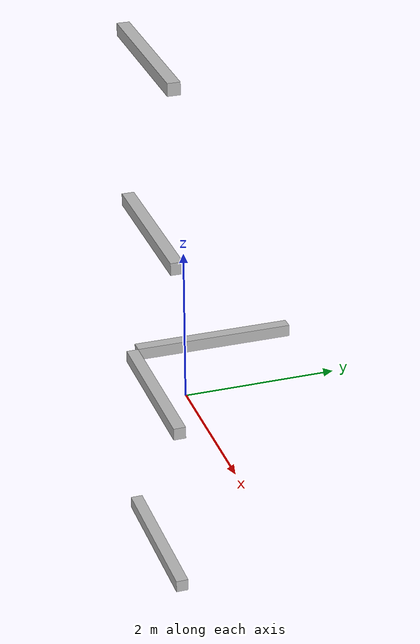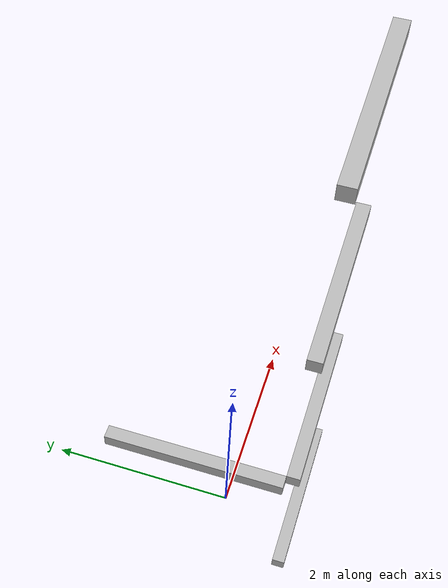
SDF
<sdf version="1.7">
 <world name="default">
  <model name="orthogonal_747_2.000.15_TS">
   <static>1</static>
   <link name="x_link_0_2_3">
    <inertial>
     <mass>1</mass>
     <inertia>
      <ixx>0.166667</ixx>
      <ixy>0</ixy>
      <ixz>0</ixz>
      <iyy>0.166667</iyy>
      <iyz>0</iyz>
      <izz>0.166667</izz>
     </inertia>
    </inertial>
    <pose>7.525 4.3 1.075 0 -0 0</pose>
    <visual name="visual_0">
     <laser_retro>386</laser_retro>
     <geometry><box><size>2 1e-06 0.15</size></box></geometry>
     <material>
      <script><name>Gazebo/Grey</name><uri>file://media/materials/scripts/gazebo.material</uri></script>
      <shader type="pixel"><normal_map>__default__</normal_map></shader>
      <ambient>0.678 0.498 0.659 1</ambient>
      <diffuse>0.7 0.7 0.7 1</diffuse>
      <specular>0.01 0.01 0.01 1</specular>
      <emissive>0 0 0 1</emissive>
     </material>
     <pose>0 -0.075 0 0 -0 0</pose>
     <transparency>1</transparency>
    </visual>
    <visual name="visual_1">
     <laser_retro>387</laser_retro>
     <geometry><box><size>2 1e-06 0.15</size></box></geometry>
     <material>
      <script><name>Gazebo/Grey</name><uri>file://media/materials/scripts/gazebo.material</uri></script>
      <shader type="pixel"><normal_map>__default__</normal_map></shader>
      <ambient>0.447 0.624 0.812 1</ambient>
      <diffuse>0.7 0.7 0.7 1</diffuse>
      <specular>0.01 0.01 0.01 1</specular>
      <emissive>0 0 0 1</emissive>
     </material>
     <pose>0 0.075 0 0 -0 0</pose>
     <transparency>1</transparency>
    </visual>
    <visual name="visual_2">
     <laser_retro>388</laser_retro>
     <geometry><box><size>2 0.15 1e-06</size></box></geometry>
     <material>
      <script><name>Gazebo/Grey</name><uri>file://media/materials/scripts/gazebo.material</uri></script>
      <shader type="pixel"><normal_map>__default__</normal_map></shader>
      <ambient>0.988 0.686 0.243 1</ambient>
      <diffuse>0.7 0.7 0.7 1</diffuse>
      <specular>0.01 0.01 0.01 1</specular>
      <emissive>0 0 0 1</emissive>
     </material>
     <pose>0 0 -0.075 0 -0 0</pose>
     <transparency>1</transparency>
    </visual>
    <visual name="visual_3">
     <laser_retro>389</laser_retro>
     <geometry><box><size>1e-06 0.15 0.15</size></box></geometry>
     <material>
      <script><name>Gazebo/Grey</name><uri>file://media/materials/scripts/gazebo.material</uri></script>
      <shader type="pixel"><normal_map>__default__</normal_map></shader>
      <ambient>0.988 0.914 0.31 1</ambient>
      <diffuse>0.7 0.7 0.7 1</diffuse>
      <specular>0.01 0.01 0.01 1</specular>
      <emissive>0 0 0 1</emissive>
     </material>
     <pose>1 0 0 0 -0 0</pose>
     <transparency>1</transparency>
    </visual>
    <visual name="visual_4">
     <laser_retro>390</laser_retro>
     <geometry><box><size>2 0.15 1e-06</size></box></geometry>
     <material>
      <script><name>Gazebo/Grey</name><uri>file://media/materials/scripts/gazebo.material</uri></script>
      <shader type="pixel"><normal_map>__default__</normal_map></shader>
      <ambient>0.937 0.161 0.161 1</ambient>
      <diffuse>0.7 0.7 0.7 1</diffuse>
      <specular>0.01 0.01 0.01 1</specular>
      <emissive>0 0 0 1</emissive>
     </material>
     <pose>0 0 0.075 0 -0 0</pose>
     <transparency>1</transparency>
    </visual>
    <visual name="visual_5">
     <laser_retro>391</laser_retro>
     <geometry><box><size>1e-06 0.15 0.15</size></box></geometry>
     <material>
      <script><name>Gazebo/Grey</name><uri>file://media/materials/scripts/gazebo.material</uri></script>
      <shader type="pixel"><normal_map>__default__</normal_map></shader>
      <ambient>0.541 0.886 0.204 1</ambient>
      <diffuse>0.7 0.7 0.7 1</diffuse>
      <specular>0.01 0.01 0.01 1</specular>
      <emissive>0 0 0 1</emissive>
     </material>
     <pose>-1 0 0 0 -0 0</pose>
     <transparency>1</transparency>
    </visual>
    <visual name="visual_texture">
     <geometry><box><size>1.9998 0.149985 0.149985</size></box></geometry>
     <material>
      <script>
       <uri>model://BASE_MODELS/simple_block_v2_textured/materials/scripts</uri>
       <uri>model://BASE_MODELS/simple_block_v2_textured/materials/textures</uri>
       <name>metal</name>
      </script>
     </material>
     <laser_retro>392</laser_retro>
    </visual>
    <collision name="collision">
     <geometry><box><size>2 0.15 0.15</size></box></geometry>
     <surface>
      <friction>
       <ode><mu>1</mu><mu2>1</mu2><fdir1>0 0 0</fdir1><slip1>0</slip1><slip2>0</slip2></ode>
       <torsional>
        <coefficient>1</coefficient>
        <patch_radius>0</patch_radius>
        <surface_radius>0</surface_radius>
        <use_patch_radius>1</use_patch_radius>
        <ode><slip>0</slip></ode>
       </torsional>
      </friction>
      <bounce><restitution_coefficient>0</restitution_coefficient><threshold>1e+06</threshold></bounce>
      <contact>
       <collide_without_contact>0</collide_without_contact>
       <collide_without_contact_bitmask>1</collide_without_contact_bitmask>
       <collide_bitmask>1</collide_bitmask>
       <ode>
        <soft_cfm>0</soft_cfm>
        <soft_erp>0.2</soft_erp>
        <kp>1e+13</kp>
        <kd>1</kd>
        <max_vel>0.01</max_vel>
        <min_depth>0</min_depth>
       </ode>
       <bullet>
        <split_impulse>1</split_impulse>
        <split_impulse_penetration_threshold>-0.01</split_impulse_penetration_threshold>
        <soft_cfm>0</soft_cfm>
        <soft_erp>0.2</soft_erp>
        <kp>1e+13</kp>
        <kd>1</kd>
       </bullet>
      </contact>
     </surface>
    </collision>
   </link>
   <link name="x_link_1_2_3">
    <inertial>
     <mass>1</mass>
     <inertia>
      <ixx>0.166667</ixx>
      <ixy>0</ixy>
      <ixz>0</ixz>
      <iyy>0.166667</iyy>
      <iyz>0</iyz>
      <izz>0.166667</izz>
     </inertia>
    </inertial>
    <pose>7.525 4.3 3.225 0 -0 0</pose>
    <visual name="visual_0">
     <laser_retro>1212</laser_retro>
     <geometry><box><size>2 1e-06 0.15</size></box></geometry>
     <material>
      <script><name>Gazebo/Grey</name><uri>file://media/materials/scripts/gazebo.material</uri></script>
      <shader type="pixel"><normal_map>__default__</normal_map></shader>
      <ambient>0.678 0.498 0.659 1</ambient>
      <diffuse>0.7 0.7 0.7 1</diffuse>
      <specular>0.01 0.01 0.01 1</specular>
      <emissive>0 0 0 1</emissive>
     </material>
     <pose>0 -0.075 0 0 -0 0</pose>
     <transparency>1</transparency>
    </visual>
    <visual name="visual_1">
     <laser_retro>1213</laser_retro>
     <geometry><box><size>2 1e-06 0.15</size></box></geometry>
     <material>
      <script><name>Gazebo/Grey</name><uri>file://media/materials/scripts/gazebo.material</uri></script>
      <shader type="pixel"><normal_map>__default__</normal_map></shader>
      <ambient>0.447 0.624 0.812 1</ambient>
      <diffuse>0.7 0.7 0.7 1</diffuse>
      <specular>0.01 0.01 0.01 1</specular>
      <emissive>0 0 0 1</emissive>
     </material>
     <pose>0 0.075 0 0 -0 0</pose>
     <transparency>1</transparency>
    </visual>
    <visual name="visual_2">
     <laser_retro>1214</laser_retro>
     <geometry><box><size>2 0.15 1e-06</size></box></geometry>
     <material>
      <script><name>Gazebo/Grey</name><uri>file://media/materials/scripts/gazebo.material</uri></script>
      <shader type="pixel"><normal_map>__default__</normal_map></shader>
      <ambient>0.988 0.686 0.243 1</ambient>
      <diffuse>0.7 0.7 0.7 1</diffuse>
      <specular>0.01 0.01 0.01 1</specular>
      <emissive>0 0 0 1</emissive>
     </material>
     <pose>0 0 -0.075 0 -0 0</pose>
     <transparency>1</transparency>
    </visual>
    <visual name="visual_3">
     <laser_retro>1215</laser_retro>
     <geometry><box><size>1e-06 0.15 0.15</size></box></geometry>
     <material>
      <script><name>Gazebo/Grey</name><uri>file://media/materials/scripts/gazebo.material</uri></script>
      <shader type="pixel"><normal_map>__default__</normal_map></shader>
      <ambient>0.988 0.914 0.31 1</ambient>
      <diffuse>0.7 0.7 0.7 1</diffuse>
      <specular>0.01 0.01 0.01 1</specular>
      <emissive>0 0 0 1</emissive>
     </material>
     <pose>1 0 0 0 -0 0</pose>
     <transparency>1</transparency>
    </visual>
    <visual name="visual_4">
     <laser_retro>1216</laser_retro>
     <geometry><box><size>2 0.15 1e-06</size></box></geometry>
     <material>
      <script><name>Gazebo/Grey</name><uri>file://media/materials/scripts/gazebo.material</uri></script>
      <shader type="pixel"><normal_map>__default__</normal_map></shader>
      <ambient>0.937 0.161 0.161 1</ambient>
      <diffuse>0.7 0.7 0.7 1</diffuse>
      <specular>0.01 0.01 0.01 1</specular>
      <emissive>0 0 0 1</emissive>
     </material>
     <pose>0 0 0.075 0 -0 0</pose>
     <transparency>1</transparency>
    </visual>
    <visual name="visual_5">
     <laser_retro>1217</laser_retro>
     <geometry><box><size>1e-06 0.15 0.15</size></box></geometry>
     <material>
      <script><name>Gazebo/Grey</name><uri>file://media/materials/scripts/gazebo.material</uri></script>
      <shader type="pixel"><normal_map>__default__</normal_map></shader>
      <ambient>0.541 0.886 0.204 1</ambient>
      <diffuse>0.7 0.7 0.7 1</diffuse>
      <specular>0.01 0.01 0.01 1</specular>
      <emissive>0 0 0 1</emissive>
     </material>
     <pose>-1 0 0 0 -0 0</pose>
     <transparency>1</transparency>
    </visual>
    <visual name="visual_texture">
     <geometry><box><size>1.9998 0.149985 0.149985</size></box></geometry>
     <material>
      <script>
       <uri>model://BASE_MODELS/simple_block_v2_textured/materials/scripts</uri>
       <uri>model://BASE_MODELS/simple_block_v2_textured/materials/textures</uri>
       <name>metal</name>
      </script>
     </material>
     <laser_retro>1218</laser_retro>
    </visual>
    <collision name="collision">
     <geometry><box><size>2 0.15 0.15</size></box></geometry>
     <surface>
      <friction>
       <ode><mu>1</mu><mu2>1</mu2><fdir1>0 0 0</fdir1><slip1>0</slip1><slip2>0</slip2></ode>
       <torsional>
        <coefficient>1</coefficient>
        <patch_radius>0</patch_radius>
        <surface_radius>0</surface_radius>
        <use_patch_radius>1</use_patch_radius>
        <ode><slip>0</slip></ode>
       </torsional>
      </friction>
      <bounce><restitution_coefficient>0</restitution_coefficient><threshold>1e+06</threshold></bounce>
      <contact>
       <collide_without_contact>0</collide_without_contact>
       <collide_without_contact_bitmask>1</collide_without_contact_bitmask>
       <collide_bitmask>1</collide_bitmask>
       <ode>
        <soft_cfm>0</soft_cfm>
        <soft_erp>0.2</soft_erp>
        <kp>1e+13</kp>
        <kd>1</kd>
        <max_vel>0.01</max_vel>
        <min_depth>0</min_depth>
       </ode>
       <bullet>
        <split_impulse>1</split_impulse>
        <split_impulse_penetration_threshold>-0.01</split_impulse_penetration_threshold>
        <soft_cfm>0</soft_cfm>
        <soft_erp>0.2</soft_erp>
        <kp>1e+13</kp>
        <kd>1</kd>
       </bullet>
      </contact>
     </surface>
    </collision>
   </link>
   <link name="y_link_1_2_3">
    <inertial>
     <mass>1</mass>
     <inertia>
      <ixx>0.166667</ixx>
      <ixy>0</ixy>
      <ixz>0</ixz>
      <iyy>0.166667</iyy>
      <iyz>0</iyz>
      <izz>0.166667</izz>
     </inertia>
    </inertial>
    <pose>6.45 5.375 3.225 0 -0 0</pose>
    <visual name="visual_0">
     <laser_retro>1219</laser_retro>
     <geometry><box><size>0.15 1e-06 0.15</size></box></geometry>
     <material>
      <script><name>Gazebo/Grey</name><uri>file://media/materials/scripts/gazebo.material</uri></script>
      <shader type="pixel"><normal_map>__default__</normal_map></shader>
      <ambient>0.678 0.498 0.659 1</ambient>
      <diffuse>0.7 0.7 0.7 1</diffuse>
      <specular>0.01 0.01 0.01 1</specular>
      <emissive>0 0 0 1</emissive>
     </material>
     <pose>0 -1 0 0 -0 0</pose>
     <transparency>1</transparency>
    </visual>
    <visual name="visual_1">
     <laser_retro>1220</laser_retro>
     <geometry><box><size>0.15 1e-06 0.15</size></box></geometry>
     <material>
      <script><name>Gazebo/Grey</name><uri>file://media/materials/scripts/gazebo.material</uri></script>
      <shader type="pixel"><normal_map>__default__</normal_map></shader>
      <ambient>0.447 0.624 0.812 1</ambient>
      <diffuse>0.7 0.7 0.7 1</diffuse>
      <specular>0.01 0.01 0.01 1</specular>
      <emissive>0 0 0 1</emissive>
     </material>
     <pose>0 1 0 0 -0 0</pose>
     <transparency>1</transparency>
    </visual>
    <visual name="visual_2">
     <laser_retro>1221</laser_retro>
     <geometry><box><size>0.15 2 1e-06</size></box></geometry>
     <material>
      <script><name>Gazebo/Grey</name><uri>file://media/materials/scripts/gazebo.material</uri></script>
      <shader type="pixel"><normal_map>__default__</normal_map></shader>
      <ambient>0.988 0.686 0.243 1</ambient>
      <diffuse>0.7 0.7 0.7 1</diffuse>
      <specular>0.01 0.01 0.01 1</specular>
      <emissive>0 0 0 1</emissive>
     </material>
     <pose>0 0 -0.075 0 -0 0</pose>
     <transparency>1</transparency>
    </visual>
    <visual name="visual_3">
     <laser_retro>1222</laser_retro>
     <geometry><box><size>1e-06 2 0.15</size></box></geometry>
     <material>
      <script><name>Gazebo/Grey</name><uri>file://media/materials/scripts/gazebo.material</uri></script>
      <shader type="pixel"><normal_map>__default__</normal_map></shader>
      <ambient>0.988 0.914 0.31 1</ambient>
      <diffuse>0.7 0.7 0.7 1</diffuse>
      <specular>0.01 0.01 0.01 1</specular>
      <emissive>0 0 0 1</emissive>
     </material>
     <pose>0.075 0 0 0 -0 0</pose>
     <transparency>1</transparency>
    </visual>
    <visual name="visual_4">
     <laser_retro>1223</laser_retro>
     <geometry><box><size>0.15 2 1e-06</size></box></geometry>
     <material>
      <script><name>Gazebo/Grey</name><uri>file://media/materials/scripts/gazebo.material</uri></script>
      <shader type="pixel"><normal_map>__default__</normal_map></shader>
      <ambient>0.937 0.161 0.161 1</ambient>
      <diffuse>0.7 0.7 0.7 1</diffuse>
      <specular>0.01 0.01 0.01 1</specular>
      <emissive>0 0 0 1</emissive>
     </material>
     <pose>0 0 0.075 0 -0 0</pose>
     <transparency>1</transparency>
    </visual>
    <visual name="visual_5">
     <laser_retro>1224</laser_retro>
     <geometry><box><size>1e-06 2 0.15</size></box></geometry>
     <material>
      <script><name>Gazebo/Grey</name><uri>file://media/materials/scripts/gazebo.material</uri></script>
      <shader type="pixel"><normal_map>__default__</normal_map></shader>
      <ambient>0.541 0.886 0.204 1</ambient>
      <diffuse>0.7 0.7 0.7 1</diffuse>
      <specular>0.01 0.01 0.01 1</specular>
      <emissive>0 0 0 1</emissive>
     </material>
     <pose>-0.075 0 0 0 -0 0</pose>
     <transparency>1</transparency>
    </visual>
    <visual name="visual_texture">
     <geometry><box><size>0.149985 1.9998 0.149985</size></box></geometry>
     <material>
      <script>
       <uri>model://BASE_MODELS/simple_block_v2_textured/materials/scripts</uri>
       <uri>model://BASE_MODELS/simple_block_v2_textured/materials/textures</uri>
       <name>metal</name>
      </script>
     </material>
     <laser_retro>1225</laser_retro>
    </visual>
    <collision name="collision">
     <geometry><box><size>0.15 2 0.15</size></box></geometry>
     <surface>
      <friction>
       <ode><mu>1</mu><mu2>1</mu2><fdir1>0 0 0</fdir1><slip1>0</slip1><slip2>0</slip2></ode>
       <torsional>
        <coefficient>1</coefficient>
        <patch_radius>0</patch_radius>
        <surface_radius>0</surface_radius>
        <use_patch_radius>1</use_patch_radius>
        <ode><slip>0</slip></ode>
       </torsional>
      </friction>
      <bounce><restitution_coefficient>0</restitution_coefficient><threshold>1e+06</threshold></bounce>
      <contact>
       <collide_without_contact>0</collide_without_contact>
       <collide_without_contact_bitmask>1</collide_without_contact_bitmask>
       <collide_bitmask>1</collide_bitmask>
       <ode>
        <soft_cfm>0</soft_cfm>
        <soft_erp>0.2</soft_erp>
        <kp>1e+13</kp>
        <kd>1</kd>
        <max_vel>0.01</max_vel>
        <min_depth>0</min_depth>
       </ode>
       <bullet>
        <split_impulse>1</split_impulse>
        <split_impulse_penetration_threshold>-0.01</split_impulse_penetration_threshold>
        <soft_cfm>0</soft_cfm>
        <soft_erp>0.2</soft_erp>
        <kp>1e+13</kp>
        <kd>1</kd>
       </bullet>
      </contact>
     </surface>
    </collision>
   </link>
   <link name="x_link_2_2_3">
    <inertial>
     <mass>1</mass>
     <inertia>
      <ixx>0.166667</ixx>
      <ixy>0</ixy>
      <ixz>0</ixz>
      <iyy>0.166667</iyy>
      <iyz>0</iyz>
      <izz>0.166667</izz>
     </inertia>
    </inertial>
    <pose>7.525 4.3 5.375 0 -0 0</pose>
    <visual name="visual_0">
     <laser_retro>2115</laser_retro>
     <geometry><box><size>2 1e-06 0.15</size></box></geometry>
     <material>
      <script><name>Gazebo/Grey</name><uri>file://media/materials/scripts/gazebo.material</uri></script>
      <shader type="pixel"><normal_map>__default__</normal_map></shader>
      <ambient>0.678 0.498 0.659 1</ambient>
      <diffuse>0.7 0.7 0.7 1</diffuse>
      <specular>0.01 0.01 0.01 1</specular>
      <emissive>0 0 0 1</emissive>
     </material>
     <pose>0 -0.075 0 0 -0 0</pose>
     <transparency>1</transparency>
    </visual>
    <visual name="visual_1">
     <laser_retro>2116</laser_retro>
     <geometry><box><size>2 1e-06 0.15</size></box></geometry>
     <material>
      <script><name>Gazebo/Grey</name><uri>file://media/materials/scripts/gazebo.material</uri></script>
      <shader type="pixel"><normal_map>__default__</normal_map></shader>
      <ambient>0.447 0.624 0.812 1</ambient>
      <diffuse>0.7 0.7 0.7 1</diffuse>
      <specular>0.01 0.01 0.01 1</specular>
      <emissive>0 0 0 1</emissive>
     </material>
     <pose>0 0.075 0 0 -0 0</pose>
     <transparency>1</transparency>
    </visual>
    <visual name="visual_2">
     <laser_retro>2117</laser_retro>
     <geometry><box><size>2 0.15 1e-06</size></box></geometry>
     <material>
      <script><name>Gazebo/Grey</name><uri>file://media/materials/scripts/gazebo.material</uri></script>
      <shader type="pixel"><normal_map>__default__</normal_map></shader>
      <ambient>0.988 0.686 0.243 1</ambient>
      <diffuse>0.7 0.7 0.7 1</diffuse>
      <specular>0.01 0.01 0.01 1</specular>
      <emissive>0 0 0 1</emissive>
     </material>
     <pose>0 0 -0.075 0 -0 0</pose>
     <transparency>1</transparency>
    </visual>
    <visual name="visual_3">
     <laser_retro>2118</laser_retro>
     <geometry><box><size>1e-06 0.15 0.15</size></box></geometry>
     <material>
      <script><name>Gazebo/Grey</name><uri>file://media/materials/scripts/gazebo.material</uri></script>
      <shader type="pixel"><normal_map>__default__</normal_map></shader>
      <ambient>0.988 0.914 0.31 1</ambient>
      <diffuse>0.7 0.7 0.7 1</diffuse>
      <specular>0.01 0.01 0.01 1</specular>
      <emissive>0 0 0 1</emissive>
     </material>
     <pose>1 0 0 0 -0 0</pose>
     <transparency>1</transparency>
    </visual>
    <visual name="visual_4">
     <laser_retro>2119</laser_retro>
     <geometry><box><size>2 0.15 1e-06</size></box></geometry>
     <material>
      <script><name>Gazebo/Grey</name><uri>file://media/materials/scripts/gazebo.material</uri></script>
      <shader type="pixel"><normal_map>__default__</normal_map></shader>
      <ambient>0.937 0.161 0.161 1</ambient>
      <diffuse>0.7 0.7 0.7 1</diffuse>
      <specular>0.01 0.01 0.01 1</specular>
      <emissive>0 0 0 1</emissive>
     </material>
     <pose>0 0 0.075 0 -0 0</pose>
     <transparency>1</transparency>
    </visual>
    <visual name="visual_5">
     <laser_retro>2120</laser_retro>
     <geometry><box><size>1e-06 0.15 0.15</size></box></geometry>
     <material>
      <script><name>Gazebo/Grey</name><uri>file://media/materials/scripts/gazebo.material</uri></script>
      <shader type="pixel"><normal_map>__default__</normal_map></shader>
      <ambient>0.541 0.886 0.204 1</ambient>
      <diffuse>0.7 0.7 0.7 1</diffuse>
      <specular>0.01 0.01 0.01 1</specular>
      <emissive>0 0 0 1</emissive>
     </material>
     <pose>-1 0 0 0 -0 0</pose>
     <transparency>1</transparency>
    </visual>
    <visual name="visual_texture">
     <geometry><box><size>1.9998 0.149985 0.149985</size></box></geometry>
     <material>
      <script>
       <uri>model://BASE_MODELS/simple_block_v2_textured/materials/scripts</uri>
       <uri>model://BASE_MODELS/simple_block_v2_textured/materials/textures</uri>
       <name>metal</name>
      </script>
     </material>
     <laser_retro>2121</laser_retro>
    </visual>
    <collision name="collision">
     <geometry><box><size>2 0.15 0.15</size></box></geometry>
     <surface>
      <friction>
       <ode><mu>1</mu><mu2>1</mu2><fdir1>0 0 0</fdir1><slip1>0</slip1><slip2>0</slip2></ode>
       <torsional>
        <coefficient>1</coefficient>
        <patch_radius>0</patch_radius>
        <surface_radius>0</surface_radius>
        <use_patch_radius>1</use_patch_radius>
        <ode><slip>0</slip></ode>
       </torsional>
      </friction>
      <bounce><restitution_coefficient>0</restitution_coefficient><threshold>1e+06</threshold></bounce>
      <contact>
       <collide_without_contact>0</collide_without_contact>
       <collide_without_contact_bitmask>1</collide_without_contact_bitmask>
       <collide_bitmask>1</collide_bitmask>
       <ode>
        <soft_cfm>0</soft_cfm>
        <soft_erp>0.2</soft_erp>
        <kp>1e+13</kp>
        <kd>1</kd>
        <max_vel>0.01</max_vel>
        <min_depth>0</min_depth>
       </ode>
       <bullet>
        <split_impulse>1</split_impulse>
        <split_impulse_penetration_threshold>-0.01</split_impulse_penetration_threshold>
        <soft_cfm>0</soft_cfm>
        <soft_erp>0.2</soft_erp>
        <kp>1e+13</kp>
        <kd>1</kd>
       </bullet>
      </contact>
     </surface>
    </collision>
   </link>
   <link name="x_link_3_2_3">
    <inertial>
     <mass>1</mass>
     <inertia>
      <ixx>0.166667</ixx>
      <ixy>0</ixy>
      <ixz>0</ixz>
      <iyy>0.166667</iyy>
      <iyz>0</iyz>
      <izz>0.166667</izz>
     </inertia>
    </inertial>
    <pose>7.525 4.3 7.525 0 -0 0</pose>
    <visual name="visual_0">
     <laser_retro>3018</laser_retro>
     <geometry><box><size>2 1e-06 0.15</size></box></geometry>
     <material>
      <script><name>Gazebo/Grey</name><uri>file://media/materials/scripts/gazebo.material</uri></script>
      <shader type="pixel"><normal_map>__default__</normal_map></shader>
      <ambient>0.678 0.498 0.659 1</ambient>
      <diffuse>0.7 0.7 0.7 1</diffuse>
      <specular>0.01 0.01 0.01 1</specular>
      <emissive>0 0 0 1</emissive>
     </material>
     <pose>0 -0.075 0 0 -0 0</pose>
     <transparency>1</transparency>
    </visual>
    <visual name="visual_1">
     <laser_retro>3019</laser_retro>
     <geometry><box><size>2 1e-06 0.15</size></box></geometry>
     <material>
      <script><name>Gazebo/Grey</name><uri>file://media/materials/scripts/gazebo.material</uri></script>
      <shader type="pixel"><normal_map>__default__</normal_map></shader>
      <ambient>0.447 0.624 0.812 1</ambient>
      <diffuse>0.7 0.7 0.7 1</diffuse>
      <specular>0.01 0.01 0.01 1</specular>
      <emissive>0 0 0 1</emissive>
     </material>
     <pose>0 0.075 0 0 -0 0</pose>
     <transparency>1</transparency>
    </visual>
    <visual name="visual_2">
     <laser_retro>3020</laser_retro>
     <geometry><box><size>2 0.15 1e-06</size></box></geometry>
     <material>
      <script><name>Gazebo/Grey</name><uri>file://media/materials/scripts/gazebo.material</uri></script>
      <shader type="pixel"><normal_map>__default__</normal_map></shader>
      <ambient>0.988 0.686 0.243 1</ambient>
      <diffuse>0.7 0.7 0.7 1</diffuse>
      <specular>0.01 0.01 0.01 1</specular>
      <emissive>0 0 0 1</emissive>
     </material>
     <pose>0 0 -0.075 0 -0 0</pose>
     <transparency>1</transparency>
    </visual>
    <visual name="visual_3">
     <laser_retro>3021</laser_retro>
     <geometry><box><size>1e-06 0.15 0.15</size></box></geometry>
     <material>
      <script><name>Gazebo/Grey</name><uri>file://media/materials/scripts/gazebo.material</uri></script>
      <shader type="pixel"><normal_map>__default__</normal_map></shader>
      <ambient>0.988 0.914 0.31 1</ambient>
      <diffuse>0.7 0.7 0.7 1</diffuse>
      <specular>0.01 0.01 0.01 1</specular>
      <emissive>0 0 0 1</emissive>
     </material>
     <pose>1 0 0 0 -0 0</pose>
     <transparency>1</transparency>
    </visual>
    <visual name="visual_4">
     <laser_retro>3022</laser_retro>
     <geometry><box><size>2 0.15 1e-06</size></box></geometry>
     <material>
      <script><name>Gazebo/Grey</name><uri>file://media/materials/scripts/gazebo.material</uri></script>
      <shader type="pixel"><normal_map>__default__</normal_map></shader>
      <ambient>0.937 0.161 0.161 1</ambient>
      <diffuse>0.7 0.7 0.7 1</diffuse>
      <specular>0.01 0.01 0.01 1</specular>
      <emissive>0 0 0 1</emissive>
     </material>
     <pose>0 0 0.075 0 -0 0</pose>
     <transparency>1</transparency>
    </visual>
    <visual name="visual_5">
     <laser_retro>3023</laser_retro>
     <geometry><box><size>1e-06 0.15 0.15</size></box></geometry>
     <material>
      <script><name>Gazebo/Grey</name><uri>file://media/materials/scripts/gazebo.material</uri></script>
      <shader type="pixel"><normal_map>__default__</normal_map></shader>
      <ambient>0.541 0.886 0.204 1</ambient>
      <diffuse>0.7 0.7 0.7 1</diffuse>
      <specular>0.01 0.01 0.01 1</specular>
      <emissive>0 0 0 1</emissive>
     </material>
     <pose>-1 0 0 0 -0 0</pose>
     <transparency>1</transparency>
    </visual>
    <visual name="visual_texture">
     <geometry><box><size>1.9998 0.149985 0.149985</size></box></geometry>
     <material>
      <script>
       <uri>model://BASE_MODELS/simple_block_v2_textured/materials/scripts</uri>
       <uri>model://BASE_MODELS/simple_block_v2_textured/materials/textures</uri>
       <name>metal</name>
      </script>
     </material>
     <laser_retro>3024</laser_retro>
    </visual>
    <collision name="collision">
     <geometry><box><size>2 0.15 0.15</size></box></geometry>
     <surface>
      <friction>
       <ode><mu>1</mu><mu2>1</mu2><fdir1>0 0 0</fdir1><slip1>0</slip1><slip2>0</slip2></ode>
       <torsional>
        <coefficient>1</coefficient>
        <patch_radius>0</patch_radius>
        <surface_radius>0</surface_radius>
        <use_patch_radius>1</use_patch_radius>
        <ode><slip>0</slip></ode>
       </torsional>
      </friction>
      <bounce><restitution_coefficient>0</restitution_coefficient><threshold>1e+06</threshold></bounce>
      <contact>
       <collide_without_contact>0</collide_without_contact>
       <collide_without_contact_bitmask>1</collide_without_contact_bitmask>
       <collide_bitmask>1</collide_bitmask>
       <ode>
        <soft_cfm>0</soft_cfm>
        <soft_erp>0.2</soft_erp>
        <kp>1e+13</kp>
        <kd>1</kd>
        <max_vel>0.01</max_vel>
        <min_depth>0</min_depth>
       </ode>
       <bullet>
        <split_impulse>1</split_impulse>
        <split_impulse_penetration_threshold>-0.01</split_impulse_penetration_threshold>
        <soft_cfm>0</soft_cfm>
        <soft_erp>0.2</soft_erp>
        <kp>1e+13</kp>
        <kd>1</kd>
       </bullet>
      </contact>
     </surface>
    </collision>
   </link>
   <pose>-6.47624 -5 -2.5 0 -0 0</pose>
  </model>
 </world>
</sdf>
